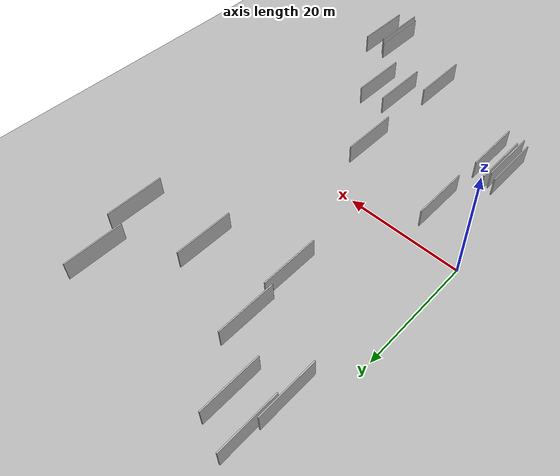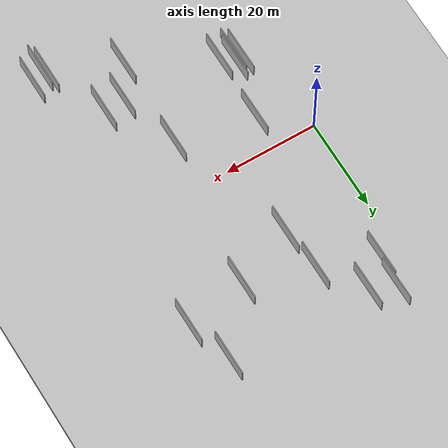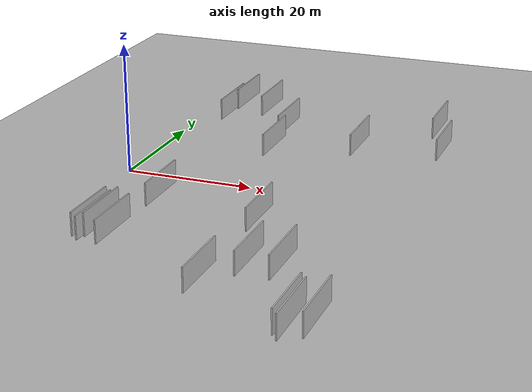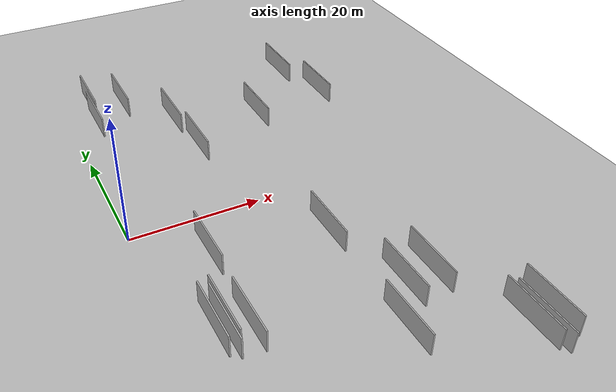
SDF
<?xml version="1.0" encoding="utf-8"?>

<sdf version="1.6">

   <world name="default">

      <gui fullscreen="0">

         <camera name="user_camera">

            <pose>-15 0 4.57585 0 0 0</pose>

            <view_controller>orbit</view_controller>

         </camera>

      </gui>

      <scene>

         <sky>

           <clouds>

             <speed>12</speed>

           </clouds>

         </sky>

         <ambient>0.4 0.4 0.4 1</ambient>

         <background>0.7 0.7 0.7 1</background>

         <shadows>1</shadows>

      </scene>

      <gravity>0 0 -9.8066</gravity>

      <magnetic_field>6e-06 2.3e-05 -4.2e-05</magnetic_field>

      <physics default="0" name="default_physics" type="ode">

         <ode>

            <solver>

               <type>quick</type>

               <iters>10</iters>

               <sor>1.0</sor>

               <use_dynamic_moi_rescaling>0</use_dynamic_moi_rescaling>

            </solver>

            <constraints>

               <cfm>0</cfm>

               <erp>0.2</erp>

               <contact_max_correcting_vel>100</contact_max_correcting_vel>

               <contact_surface_layer>0.001</contact_surface_layer>

            </constraints>

         </ode>

         <max_step_size>0.004</max_step_size>

         <real_time_factor>1</real_time_factor>

         <real_time_update_rate>250</real_time_update_rate>

      </physics>

      <light name="sun" type="directional">

         <cast_shadows>1</cast_shadows>

         <pose>0 0 10 0 0 0</pose>

         <diffuse>0.8 0.8 0.8 1</diffuse>

         <specular>0.2 0.2 0.2 1</specular>

         <attenuation>

            <range>1000</range>

            <constant>0.9</constant>

            <linear>0.01</linear>

            <quadratic>0.001</quadratic>

         </attenuation>

         <direction>-0.5 0.1 -0.9</direction>

      </light>

      <include>

         <name>ground_plane_1</name>

         <uri>model://HANNAS_ground_plane</uri>

         <pose>0 0 0  0 0 0</pose>

      </include>

      <include>

         <name>ground_plane_2</name>

         <uri>model://HANNAS_ground_plane</uri>

         <pose>100 0 0  0 0 0</pose>

      </include>

      <model name="HANNAS_wall_1">

         <static>1</static>

         <pose frame="">30.0001 22.1129 0.0 0.000000 0.000000 1.570796</pose>

         <link name="link">

            <pose frame="">0 0 2.00 0 0 0</pose>

            <collision name="collision">

               <geometry>

                  <box>

                     <size>10.00 0.2 4.00</size>

                  </box>

               </geometry>

               <max_contacts>10</max_contacts>

               <surface>

                  <contact>

                     <ode/>

                  </contact>

                  <bounce/>

                  <friction>

                     <torsional>

                        <ode/>

                     </torsional>

                     <ode/>

                  </friction>

               </surface>

            </collision>

            <visual name="visual">

               <cast_shadows>0</cast_shadows>

               <geometry>

                  <box>

                     <size>10.00 0.2 4.00</size>

                  </box>

               </geometry>

               <material>

                  <script>

                     <uri>model://HANNAS_wall/materials/scripts</uri>

                     <uri>model://HANNAS_wall/materials/textures</uri>

                     <name>vrc/HANNAS_wall</name>

                  </script>

               </material>

            </visual>

            <self_collide>0</self_collide>

            <enable_wind>0</enable_wind>

            <kinematic>0</kinematic>

         </link>

      </model>

      <model name="HANNAS_wall_2">

         <static>1</static>

         <pose frame="">40.3237 -37.8843 0.0 0.000000 0.000000 1.570796</pose>

         <link name="link">

            <pose frame="">0 0 2.00 0 0 0</pose>

            <collision name="collision">

               <geometry>

                  <box>

                     <size>10.00 0.2 4.00</size>

                  </box>

               </geometry>

               <max_contacts>10</max_contacts>

               <surface>

                  <contact>

                     <ode/>

                  </contact>

                  <bounce/>

                  <friction>

                     <torsional>

                        <ode/>

                     </torsional>

                     <ode/>

                  </friction>

               </surface>

            </collision>

            <visual name="visual">

               <cast_shadows>0</cast_shadows>

               <geometry>

                  <box>

                     <size>10.00 0.2 4.00</size>

                  </box>

               </geometry>

               <material>

                  <script>

                     <uri>model://HANNAS_wall/materials/scripts</uri>

                     <uri>model://HANNAS_wall/materials/textures</uri>

                     <name>vrc/HANNAS_wall</name>

                  </script>

               </material>

            </visual>

            <self_collide>0</self_collide>

            <enable_wind>0</enable_wind>

            <kinematic>0</kinematic>

         </link>

      </model>

      <model name="HANNAS_wall_3">

         <static>1</static>

         <pose frame="">29.4672 -24.1367 0.0 0.000000 0.000000 1.570796</pose>

         <link name="link">

            <pose frame="">0 0 2.00 0 0 0</pose>

            <collision name="collision">

               <geometry>

                  <box>

                     <size>10.00 0.2 4.00</size>

                  </box>

               </geometry>

               <max_contacts>10</max_contacts>

               <surface>

                  <contact>

                     <ode/>

                  </contact>

                  <bounce/>

                  <friction>

                     <torsional>

                        <ode/>

                     </torsional>

                     <ode/>

                  </friction>

               </surface>

            </collision>

            <visual name="visual">

               <cast_shadows>0</cast_shadows>

               <geometry>

                  <box>

                     <size>10.00 0.2 4.00</size>

                  </box>

               </geometry>

               <material>

                  <script>

                     <uri>model://HANNAS_wall/materials/scripts</uri>

                     <uri>model://HANNAS_wall/materials/textures</uri>

                     <name>vrc/HANNAS_wall</name>

                  </script>

               </material>

            </visual>

            <self_collide>0</self_collide>

            <enable_wind>0</enable_wind>

            <kinematic>0</kinematic>

         </link>

      </model>

      <model name="HANNAS_wall_4">

         <static>1</static>

         <pose frame="">40.1848 34.2560 0.0 0.000000 0.000000 1.570796</pose>

         <link name="link">

            <pose frame="">0 0 2.00 0 0 0</pose>

            <collision name="collision">

               <geometry>

                  <box>

                     <size>10.00 0.2 4.00</size>

                  </box>

               </geometry>

               <max_contacts>10</max_contacts>

               <surface>

                  <contact>

                     <ode/>

                  </contact>

                  <bounce/>

                  <friction>

                     <torsional>

                        <ode/>

                     </torsional>

                     <ode/>

                  </friction>

               </surface>

            </collision>

            <visual name="visual">

               <cast_shadows>0</cast_shadows>

               <geometry>

                  <box>

                     <size>10.00 0.2 4.00</size>

                  </box>

               </geometry>

               <material>

                  <script>

                     <uri>model://HANNAS_wall/materials/scripts</uri>

                     <uri>model://HANNAS_wall/materials/textures</uri>

                     <name>vrc/HANNAS_wall</name>

                  </script>

               </material>

            </visual>

            <self_collide>0</self_collide>

            <enable_wind>0</enable_wind>

            <kinematic>0</kinematic>

         </link>

      </model>

      <model name="HANNAS_wall_5">

         <static>1</static>

         <pose frame="">39.4320 -36.8955 0.0 0.000000 0.000000 1.570796</pose>

         <link name="link">

            <pose frame="">0 0 2.00 0 0 0</pose>

            <collision name="collision">

               <geometry>

                  <box>

                     <size>10.00 0.2 4.00</size>

                  </box>

               </geometry>

               <max_contacts>10</max_contacts>

               <surface>

                  <contact>

                     <ode/>

                  </contact>

                  <bounce/>

                  <friction>

                     <torsional>

                        <ode/>

                     </torsional>

                     <ode/>

                  </friction>

               </surface>

            </collision>

            <visual name="visual">

               <cast_shadows>0</cast_shadows>

               <geometry>

                  <box>

                     <size>10.00 0.2 4.00</size>

                  </box>

               </geometry>

               <material>

                  <script>

                     <uri>model://HANNAS_wall/materials/scripts</uri>

                     <uri>model://HANNAS_wall/materials/textures</uri>

                     <name>vrc/HANNAS_wall</name>

                  </script>

               </material>

            </visual>

            <self_collide>0</self_collide>

            <enable_wind>0</enable_wind>

            <kinematic>0</kinematic>

         </link>

      </model>

      <model name="HANNAS_wall_6">

         <static>1</static>

         <pose frame="">25.6705 -10.8942 0.0 0.000000 0.000000 1.570796</pose>

         <link name="link">

            <pose frame="">0 0 2.00 0 0 0</pose>

            <collision name="collision">

               <geometry>

                  <box>

                     <size>10.00 0.2 4.00</size>

                  </box>

               </geometry>

               <max_contacts>10</max_contacts>

               <surface>

                  <contact>

                     <ode/>

                  </contact>

                  <bounce/>

                  <friction>

                     <torsional>

                        <ode/>

                     </torsional>

                     <ode/>

                  </friction>

               </surface>

            </collision>

            <visual name="visual">

               <cast_shadows>0</cast_shadows>

               <geometry>

                  <box>

                     <size>10.00 0.2 4.00</size>

                  </box>

               </geometry>

               <material>

                  <script>

                     <uri>model://HANNAS_wall/materials/scripts</uri>

                     <uri>model://HANNAS_wall/materials/textures</uri>

                     <name>vrc/HANNAS_wall</name>

                  </script>

               </material>

            </visual>

            <self_collide>0</self_collide>

            <enable_wind>0</enable_wind>

            <kinematic>0</kinematic>

         </link>

      </model>

      <model name="HANNAS_wall_7">

         <static>1</static>

         <pose frame="">6.0155 -20.1394 0.0 0.000000 0.000000 1.570796</pose>

         <link name="link">

            <pose frame="">0 0 2.00 0 0 0</pose>

            <collision name="collision">

               <geometry>

                  <box>

                     <size>10.00 0.2 4.00</size>

                  </box>

               </geometry>

               <max_contacts>10</max_contacts>

               <surface>

                  <contact>

                     <ode/>

                  </contact>

                  <bounce/>

                  <friction>

                     <torsional>

                        <ode/>

                     </torsional>

                     <ode/>

                  </friction>

               </surface>

            </collision>

            <visual name="visual">

               <cast_shadows>0</cast_shadows>

               <geometry>

                  <box>

                     <size>10.00 0.2 4.00</size>

                  </box>

               </geometry>

               <material>

                  <script>

                     <uri>model://HANNAS_wall/materials/scripts</uri>

                     <uri>model://HANNAS_wall/materials/textures</uri>

                     <name>vrc/HANNAS_wall</name>

                  </script>

               </material>

            </visual>

            <self_collide>0</self_collide>

            <enable_wind>0</enable_wind>

            <kinematic>0</kinematic>

         </link>

      </model>

      <model name="HANNAS_wall_8">

         <static>1</static>

         <pose frame="">5.5398 -21.4926 0.0 0.000000 0.000000 1.570796</pose>

         <link name="link">

            <pose frame="">0 0 2.00 0 0 0</pose>

            <collision name="collision">

               <geometry>

                  <box>

                     <size>10.00 0.2 4.00</size>

                  </box>

               </geometry>

               <max_contacts>10</max_contacts>

               <surface>

                  <contact>

                     <ode/>

                  </contact>

                  <bounce/>

                  <friction>

                     <torsional>

                        <ode/>

                     </torsional>

                     <ode/>

                  </friction>

               </surface>

            </collision>

            <visual name="visual">

               <cast_shadows>0</cast_shadows>

               <geometry>

                  <box>

                     <size>10.00 0.2 4.00</size>

                  </box>

               </geometry>

               <material>

                  <script>

                     <uri>model://HANNAS_wall/materials/scripts</uri>

                     <uri>model://HANNAS_wall/materials/textures</uri>

                     <name>vrc/HANNAS_wall</name>

                  </script>

               </material>

            </visual>

            <self_collide>0</self_collide>

            <enable_wind>0</enable_wind>

            <kinematic>0</kinematic>

         </link>

      </model>

      <model name="HANNAS_wall_9">

         <static>1</static>

         <pose frame="">43.2239 24.5373 0.0 0.000000 0.000000 1.570796</pose>

         <link name="link">

            <pose frame="">0 0 2.00 0 0 0</pose>

            <collision name="collision">

               <geometry>

                  <box>

                     <size>10.00 0.2 4.00</size>

                  </box>

               </geometry>

               <max_contacts>10</max_contacts>

               <surface>

                  <contact>

                     <ode/>

                  </contact>

                  <bounce/>

                  <friction>

                     <torsional>

                        <ode/>

                     </torsional>

                     <ode/>

                  </friction>

               </surface>

            </collision>

            <visual name="visual">

               <cast_shadows>0</cast_shadows>

               <geometry>

                  <box>

                     <size>10.00 0.2 4.00</size>

                  </box>

               </geometry>

               <material>

                  <script>

                     <uri>model://HANNAS_wall/materials/scripts</uri>

                     <uri>model://HANNAS_wall/materials/textures</uri>

                     <name>vrc/HANNAS_wall</name>

                  </script>

               </material>

            </visual>

            <self_collide>0</self_collide>

            <enable_wind>0</enable_wind>

            <kinematic>0</kinematic>

         </link>

      </model>

      <model name="HANNAS_wall_10">

         <static>1</static>

         <pose frame="">4.6369 37.4516 0.0 0.000000 0.000000 1.570796</pose>

         <link name="link">

            <pose frame="">0 0 2.00 0 0 0</pose>

            <collision name="collision">

               <geometry>

                  <box>

                     <size>10.00 0.2 4.00</size>

                  </box>

               </geometry>

               <max_contacts>10</max_contacts>

               <surface>

                  <contact>

                     <ode/>

                  </contact>

                  <bounce/>

                  <friction>

                     <torsional>

                        <ode/>

                     </torsional>

                     <ode/>

                  </friction>

               </surface>

            </collision>

            <visual name="visual">

               <cast_shadows>0</cast_shadows>

               <geometry>

                  <box>

                     <size>10.00 0.2 4.00</size>

                  </box>

               </geometry>

               <material>

                  <script>

                     <uri>model://HANNAS_wall/materials/scripts</uri>

                     <uri>model://HANNAS_wall/materials/textures</uri>

                     <name>vrc/HANNAS_wall</name>

                  </script>

               </material>

            </visual>

            <self_collide>0</self_collide>

            <enable_wind>0</enable_wind>

            <kinematic>0</kinematic>

         </link>

      </model>

      <model name="HANNAS_wall_11">

         <static>1</static>

         <pose frame="">42.9920 -36.3262 0.0 0.000000 0.000000 1.570796</pose>

         <link name="link">

            <pose frame="">0 0 2.00 0 0 0</pose>

            <collision name="collision">

               <geometry>

                  <box>

                     <size>10.00 0.2 4.00</size>

                  </box>

               </geometry>

               <max_contacts>10</max_contacts>

               <surface>

                  <contact>

                     <ode/>

                  </contact>

                  <bounce/>

                  <friction>

                     <torsional>

                        <ode/>

                     </torsional>

                     <ode/>

                  </friction>

               </surface>

            </collision>

            <visual name="visual">

               <cast_shadows>0</cast_shadows>

               <geometry>

                  <box>

                     <size>10.00 0.2 4.00</size>

                  </box>

               </geometry>

               <material>

                  <script>

                     <uri>model://HANNAS_wall/materials/scripts</uri>

                     <uri>model://HANNAS_wall/materials/textures</uri>

                     <name>vrc/HANNAS_wall</name>

                  </script>

               </material>

            </visual>

            <self_collide>0</self_collide>

            <enable_wind>0</enable_wind>

            <kinematic>0</kinematic>

         </link>

      </model>

      <model name="HANNAS_wall_12">

         <static>1</static>

         <pose frame="">17.1694 17.3217 0.0 0.000000 0.000000 1.570796</pose>

         <link name="link">

            <pose frame="">0 0 2.00 0 0 0</pose>

            <collision name="collision">

               <geometry>

                  <box>

                     <size>10.00 0.2 4.00</size>

                  </box>

               </geometry>

               <max_contacts>10</max_contacts>

               <surface>

                  <contact>

                     <ode/>

                  </contact>

                  <bounce/>

                  <friction>

                     <torsional>

                        <ode/>

                     </torsional>

                     <ode/>

                  </friction>

               </surface>

            </collision>

            <visual name="visual">

               <cast_shadows>0</cast_shadows>

               <geometry>

                  <box>

                     <size>10.00 0.2 4.00</size>

                  </box>

               </geometry>

               <material>

                  <script>

                     <uri>model://HANNAS_wall/materials/scripts</uri>

                     <uri>model://HANNAS_wall/materials/textures</uri>

                     <name>vrc/HANNAS_wall</name>

                  </script>

               </material>

            </visual>

            <self_collide>0</self_collide>

            <enable_wind>0</enable_wind>

            <kinematic>0</kinematic>

         </link>

      </model>

      <model name="HANNAS_wall_13">

         <static>1</static>

         <pose frame="">4.3527 -20.5726 0.0 0.000000 0.000000 1.570796</pose>

         <link name="link">

            <pose frame="">0 0 2.00 0 0 0</pose>

            <collision name="collision">

               <geometry>

                  <box>

                     <size>10.00 0.2 4.00</size>

                  </box>

               </geometry>

               <max_contacts>10</max_contacts>

               <surface>

                  <contact>

                     <ode/>

                  </contact>

                  <bounce/>

                  <friction>

                     <torsional>

                        <ode/>

                     </torsional>

                     <ode/>

                  </friction>

               </surface>

            </collision>

            <visual name="visual">

               <cast_shadows>0</cast_shadows>

               <geometry>

                  <box>

                     <size>10.00 0.2 4.00</size>

                  </box>

               </geometry>

               <material>

                  <script>

                     <uri>model://HANNAS_wall/materials/scripts</uri>

                     <uri>model://HANNAS_wall/materials/textures</uri>

                     <name>vrc/HANNAS_wall</name>

                  </script>

               </material>

            </visual>

            <self_collide>0</self_collide>

            <enable_wind>0</enable_wind>

            <kinematic>0</kinematic>

         </link>

      </model>

      <model name="HANNAS_wall_14">

         <static>1</static>

         <pose frame="">16.1810 26.7199 0.0 0.000000 0.000000 1.570796</pose>

         <link name="link">

            <pose frame="">0 0 2.00 0 0 0</pose>

            <collision name="collision">

               <geometry>

                  <box>

                     <size>10.00 0.2 4.00</size>

                  </box>

               </geometry>

               <max_contacts>10</max_contacts>

               <surface>

                  <contact>

                     <ode/>

                  </contact>

                  <bounce/>

                  <friction>

                     <torsional>

                        <ode/>

                     </torsional>

                     <ode/>

                  </friction>

               </surface>

            </collision>

            <visual name="visual">

               <cast_shadows>0</cast_shadows>

               <geometry>

                  <box>

                     <size>10.00 0.2 4.00</size>

                  </box>

               </geometry>

               <material>

                  <script>

                     <uri>model://HANNAS_wall/materials/scripts</uri>

                     <uri>model://HANNAS_wall/materials/textures</uri>

                     <name>vrc/HANNAS_wall</name>

                  </script>

               </material>

            </visual>

            <self_collide>0</self_collide>

            <enable_wind>0</enable_wind>

            <kinematic>0</kinematic>

         </link>

      </model>

      <model name="HANNAS_wall_15">

         <static>1</static>

         <pose frame="">25.4386 -30.7612 0.0 0.000000 0.000000 1.570796</pose>

         <link name="link">

            <pose frame="">0 0 2.00 0 0 0</pose>

            <collision name="collision">

               <geometry>

                  <box>

                     <size>10.00 0.2 4.00</size>

                  </box>

               </geometry>

               <max_contacts>10</max_contacts>

               <surface>

                  <contact>

                     <ode/>

                  </contact>

                  <bounce/>

                  <friction>

                     <torsional>

                        <ode/>

                     </torsional>

                     <ode/>

                  </friction>

               </surface>

            </collision>

            <visual name="visual">

               <cast_shadows>0</cast_shadows>

               <geometry>

                  <box>

                     <size>10.00 0.2 4.00</size>

                  </box>

               </geometry>

               <material>

                  <script>

                     <uri>model://HANNAS_wall/materials/scripts</uri>

                     <uri>model://HANNAS_wall/materials/textures</uri>

                     <name>vrc/HANNAS_wall</name>

                  </script>

               </material>

            </visual>

            <self_collide>0</self_collide>

            <enable_wind>0</enable_wind>

            <kinematic>0</kinematic>

         </link>

      </model>

      <model name="HANNAS_wall_16">

         <static>1</static>

         <pose frame="">8.9900 -7.6367 0.0 0.000000 0.000000 1.570796</pose>

         <link name="link">

            <pose frame="">0 0 2.00 0 0 0</pose>

            <collision name="collision">

               <geometry>

                  <box>

                     <size>10.00 0.2 4.00</size>

                  </box>

               </geometry>

               <max_contacts>10</max_contacts>

               <surface>

                  <contact>

                     <ode/>

                  </contact>

                  <bounce/>

                  <friction>

                     <torsional>

                        <ode/>

                     </torsional>

                     <ode/>

                  </friction>

               </surface>

            </collision>

            <visual name="visual">

               <cast_shadows>0</cast_shadows>

               <geometry>

                  <box>

                     <size>10.00 0.2 4.00</size>

                  </box>

               </geometry>

               <material>

                  <script>

                     <uri>model://HANNAS_wall/materials/scripts</uri>

                     <uri>model://HANNAS_wall/materials/textures</uri>

                     <name>vrc/HANNAS_wall</name>

                  </script>

               </material>

            </visual>

            <self_collide>0</self_collide>

            <enable_wind>0</enable_wind>

            <kinematic>0</kinematic>

         </link>

      </model>

      <model name="HANNAS_wall_17">

         <static>1</static>

         <pose frame="">9.8505 35.5563 0.0 0.000000 0.000000 1.570796</pose>

         <link name="link">

            <pose frame="">0 0 2.00 0 0 0</pose>

            <collision name="collision">

               <geometry>

                  <box>

                     <size>10.00 0.2 4.00</size>

                  </box>

               </geometry>

               <max_contacts>10</max_contacts>

               <surface>

                  <contact>

                     <ode/>

                  </contact>

                  <bounce/>

                  <friction>

                     <torsional>

                        <ode/>

                     </torsional>

                     <ode/>

                  </friction>

               </surface>

            </collision>

            <visual name="visual">

               <cast_shadows>0</cast_shadows>

               <geometry>

                  <box>

                     <size>10.00 0.2 4.00</size>

                  </box>

               </geometry>

               <material>

                  <script>

                     <uri>model://HANNAS_wall/materials/scripts</uri>

                     <uri>model://HANNAS_wall/materials/textures</uri>

                     <name>vrc/HANNAS_wall</name>

                  </script>

               </material>

            </visual>

            <self_collide>0</self_collide>

            <enable_wind>0</enable_wind>

            <kinematic>0</kinematic>

         </link>

      </model>

      <model name="HANNAS_wall_18">

         <static>1</static>

         <pose frame="">8.5831 -21.7777 0.0 0.000000 0.000000 1.570796</pose>

         <link name="link">

            <pose frame="">0 0 2.00 0 0 0</pose>

            <collision name="collision">

               <geometry>

                  <box>

                     <size>10.00 0.2 4.00</size>

                  </box>

               </geometry>

               <max_contacts>10</max_contacts>

               <surface>

                  <contact>

                     <ode/>

                  </contact>

                  <bounce/>

                  <friction>

                     <torsional>

                        <ode/>

                     </torsional>

                     <ode/>

                  </friction>

               </surface>

            </collision>

            <visual name="visual">

               <cast_shadows>0</cast_shadows>

               <geometry>

                  <box>

                     <size>10.00 0.2 4.00</size>

                  </box>

               </geometry>

               <material>

                  <script>

                     <uri>model://HANNAS_wall/materials/scripts</uri>

                     <uri>model://HANNAS_wall/materials/textures</uri>

                     <name>vrc/HANNAS_wall</name>

                  </script>

               </material>

            </visual>

            <self_collide>0</self_collide>

            <enable_wind>0</enable_wind>

            <kinematic>0</kinematic>

         </link>

      </model>

      <model name="HANNAS_wall_19">

         <static>1</static>

         <pose frame="">4.1501 31.2631 0.0 0.000000 0.000000 1.570796</pose>

         <link name="link">

            <pose frame="">0 0 2.00 0 0 0</pose>

            <collision name="collision">

               <geometry>

                  <box>

                     <size>10.00 0.2 4.00</size>

                  </box>

               </geometry>

               <max_contacts>10</max_contacts>

               <surface>

                  <contact>

                     <ode/>

                  </contact>

                  <bounce/>

                  <friction>

                     <torsional>

                        <ode/>

                     </torsional>

                     <ode/>

                  </friction>

               </surface>

            </collision>

            <visual name="visual">

               <cast_shadows>0</cast_shadows>

               <geometry>

                  <box>

                     <size>10.00 0.2 4.00</size>

                  </box>

               </geometry>

               <material>

                  <script>

                     <uri>model://HANNAS_wall/materials/scripts</uri>

                     <uri>model://HANNAS_wall/materials/textures</uri>

                     <name>vrc/HANNAS_wall</name>

                  </script>

               </material>

            </visual>

            <self_collide>0</self_collide>

            <enable_wind>0</enable_wind>

            <kinematic>0</kinematic>

         </link>

      </model>

      <model name="HANNAS_wall_20">

         <static>1</static>

         <pose frame="">33.9987 -23.6762 0.0 0.000000 0.000000 1.570796</pose>

         <link name="link">

            <pose frame="">0 0 2.00 0 0 0</pose>

            <collision name="collision">

               <geometry>

                  <box>

                     <size>10.00 0.2 4.00</size>

                  </box>

               </geometry>

               <max_contacts>10</max_contacts>

               <surface>

                  <contact>

                     <ode/>

                  </contact>

                  <bounce/>

                  <friction>

                     <torsional>

                        <ode/>

                     </torsional>

                     <ode/>

                  </friction>

               </surface>

            </collision>

            <visual name="visual">

               <cast_shadows>0</cast_shadows>

               <geometry>

                  <box>

                     <size>10.00 0.2 4.00</size>

                  </box>

               </geometry>

               <material>

                  <script>

                     <uri>model://HANNAS_wall/materials/scripts</uri>

                     <uri>model://HANNAS_wall/materials/textures</uri>

                     <name>vrc/HANNAS_wall</name>

                  </script>

               </material>

            </visual>

            <self_collide>0</self_collide>

            <enable_wind>0</enable_wind>

            <kinematic>0</kinematic>

         </link>

      </model>

   </world>

</sdf>

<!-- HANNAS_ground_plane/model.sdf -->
<sdf version="1.4">
<model name="HANNAS_ground_plane">
  <static>true</static>
    <link name="link">
      <collision name="collision">
        <geometry>
          <plane>
            <normal>0 0 1</normal>
            <size>1000 1000</size>
          </plane>
        </geometry>
        <surface>
          <friction>
            <ode>
              <mu>100</mu>
              <mu2>50</mu2>
            </ode>
          </friction>
        </surface>
      </collision>
      <visual name="visual">
        <cast_shadows>false</cast_shadows>
        <geometry>
          <plane>
            <normal>0 0 1</normal>
            <size>1000 1000</size>
          </plane>
        </geometry>
        <material>
          <script>
            <uri>model://HANNAS_ground_plane/materials/scripts/HANNAS_ground_plane.material</uri>
	    <uri>model://HANNAS_ground_plane/materials/textures</uri>
            <name>HANNASGroundPlane/Image</name>
          </script>
        </material>
      </visual>
    </link>
  </model>
</sdf>
